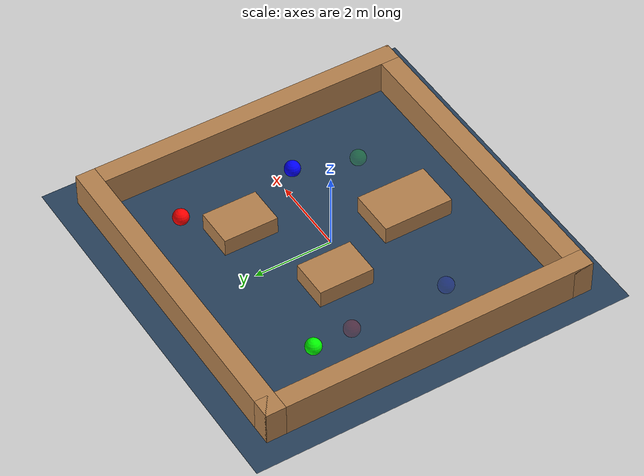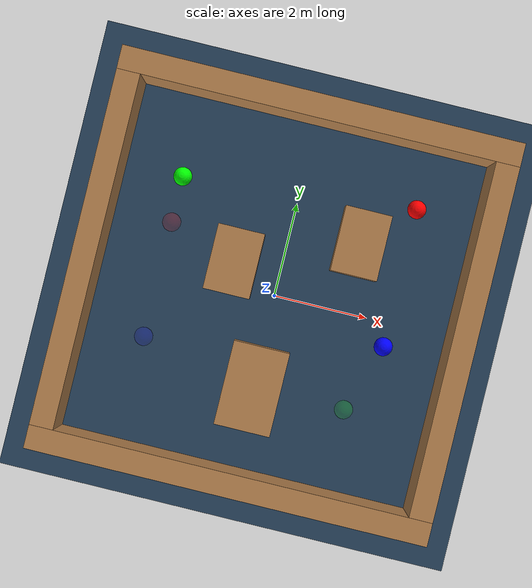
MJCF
<mujoco>
  <compiler inertiafromgeom="true" angle="radian" coordinate="local"/>
  <option timestep="0.01" gravity="0 0 -9.8" iterations="20" integrator="Euler">
    <flag contact="enable"/>
  </option>
  <default>
    <joint damping="1" limited="false"/>
    <geom friction="0.5 0.1 0.1" density="1000" margin="0.002" condim="1" contype="1" conaffinity="1"/>
  </default>
  <asset>
    <texture type="2d" name="groundplane" builtin="checker" rgb1="0.2 0.3 0.4" rgb2="0.1 0.2 0.3" width="100" height="100"/>
    <texture name="skybox" type="skybox" builtin="gradient" rgb1=".4 .6 .8" rgb2="0 0 0" width="800" height="800" mark="random" markrgb="1 1 1"/>
    <material name="groundplane" texture="groundplane" texrepeat="20 20"/>
    <material name="wall_material" rgba="0.7 0.5 0.3 1.0"/> <!-- Black-colored walls -->
    <material name="goal_material" rgba="0.0 1.0 0.0 1.0"/> <!-- Green for goals -->
    <material name="obstacle_material" rgba="0.7 0.5 0.3 1.0"/> <!-- Gray for obstacles -->
  </asset>
  <visual>
    <headlight ambient="0.4 0.4 0.4" diffuse="0.8 0.8 0.8" specular="0.1 0.1 0.1"/>
    <map znear="0.01"/>
    <quality shadowsize="2048"/>
  </visual>
  <worldbody>

    <geom name="ground" type="plane" size="40 40 0.25" pos="0 0 -0.1" material="groundplane"/>

    <geom name="wall_top" type="box" size="4.25 0.25 0.5" pos="0.0 4.0 0.25" material="wall_material" contype="1" conaffinity="1"/>
    <geom name="wall_bottom" type="box" size="4.25 0.25 0.5" pos="0 -4.0 0.25" material="wall_material" contype="1" conaffinity="1"/>
    <geom name="wall_left" type="box" size="0.25 4.25 0.5" pos="-4.0 0 0.25" material="wall_material" contype="1" conaffinity="1"/>
    <geom name="wall_right" type="box" size="0.25 4.25 0.5" pos="4.0 0 0.25" material="wall_material" contype="1" conaffinity="1"/>

    <geom name="obstacle1" type="box" size="0.5 0.7 0.25" pos="-1.0 0.5 0.1" material="obstacle_material" contype="1" conaffinity="1"/>
    <geom name="obstacle2" type="box" size="0.6 0.9 0.25" pos="0.0 -2.0 0.1" material="obstacle_material" contype="1" conaffinity="1"/>
    <geom name="obstacle3" type="box" size="0.5 0.7 0.25" pos="1.5 1.5 0.1" material="obstacle_material" contype="1" conaffinity="1"/>

    <body name="goal_1" pos="-2.5 -1.5 0">
      <geom name="g1" type="sphere" size="0.2" rgba="0.0 0.0 1.0 0.1" contype="0" conaffinity="0"/>
    </body>

    <body name="goal_2" pos="-2.5 1.0 0">
      <geom name="g2" type="sphere" size="0.2" rgba="1.0 0.0 0.0 0.1" contype="0" conaffinity="0"/>
    </body>

    <body name="goal_3" pos="2.0 -2.0 0">
      <geom name="g3" type="sphere" size="0.2" rgba="0.0 1.0 0.0 0.1" contype="0" conaffinity="0"/>
    </body>

    <body name="agent_1" pos="2.5 -0.5 0">
      <geom name="s1" type="sphere" size="0.2" rgba="0.0 0.0 1.0 2.0" contype="1" conaffinity="1"/>
      <joint name="agent1_x" type="slide" pos="0 0 0" axis="1 0 0"/>
      <joint name="agent1_y" type="slide" pos="0 0 0" axis="0 1 0"/>
    </body>

    <body name="agent_2" pos="2.5 2.5 0">
      <geom name="s2" type="sphere" size="0.2" rgba="1.0 0.0 0.0 2.0" contype="1" conaffinity="1"/>
      <joint name="agent2_x" type="slide" pos="0 0 0" axis="1 0 0"/>
      <joint name="agent2_y" type="slide" pos="0 0 0" axis="0 1 0"/>
    </body>

    <body name="agent_3" pos="-2.5 2.0 0">
      <geom name="s3" type="sphere" size="0.2" rgba="0.0 1.0 0.0 2.0" contype="1" conaffinity="1"/>
      <joint name="agent3_x" type="slide" pos="0 0 0" axis="1 0 0"/>
      <joint name="agent3_y" type="slide" pos="0 0 0" axis="0 1 0"/>
    </body>

  </worldbody>

  <actuator>
    <motor name="motor1_x" joint="agent1_x" ctrlrange="-1.0 1.0" ctrllimited="true" gear="100"/>
    <motor name="motor1_y" joint="agent1_y" ctrlrange="-1.0 1.0" ctrllimited="true" gear="100"/>
    <motor name="motor2_x" joint="agent2_x" ctrlrange="-1.0 1.0" ctrllimited="true" gear="100"/>
    <motor name="motor2_y" joint="agent2_y" ctrlrange="-1.0 1.0" ctrllimited="true" gear="100"/>
    <motor name="motor3_x" joint="agent3_x" ctrlrange="-1.0 1.0" ctrllimited="true" gear="100"/>
    <motor name="motor3_y" joint="agent3_y" ctrlrange="-1.0 1.0" ctrllimited="true" gear="100"/>
  </actuator>
</mujoco>
